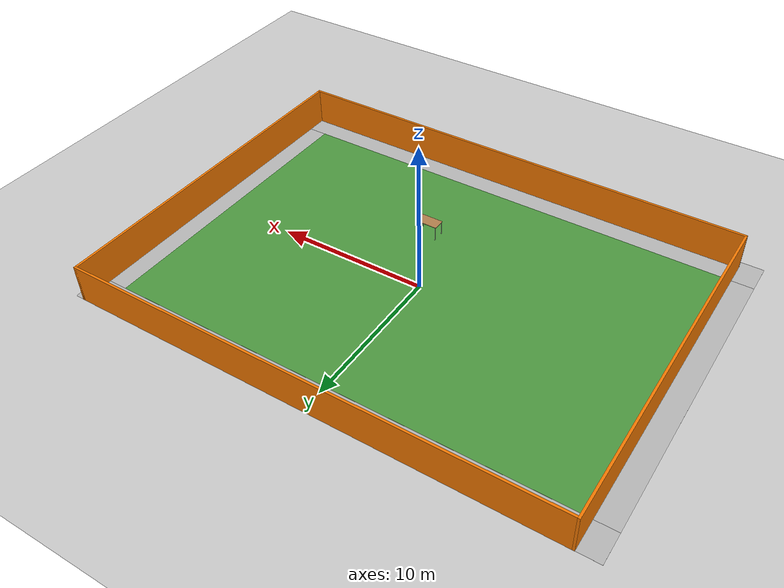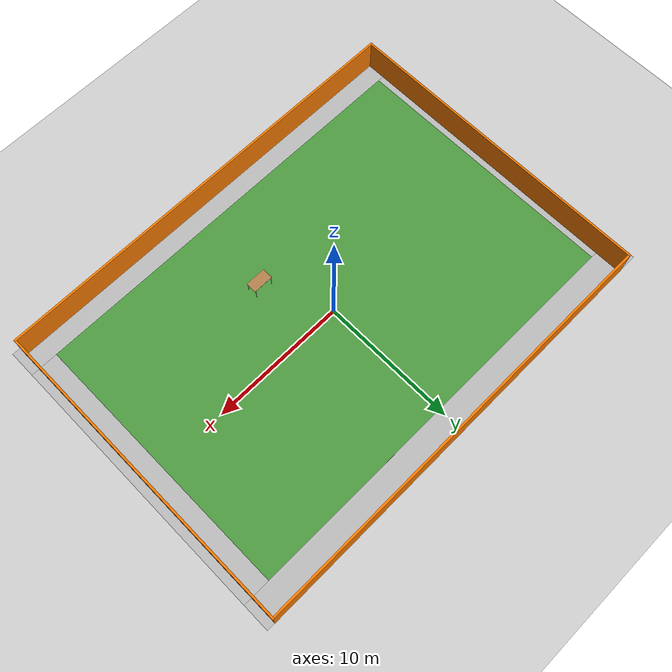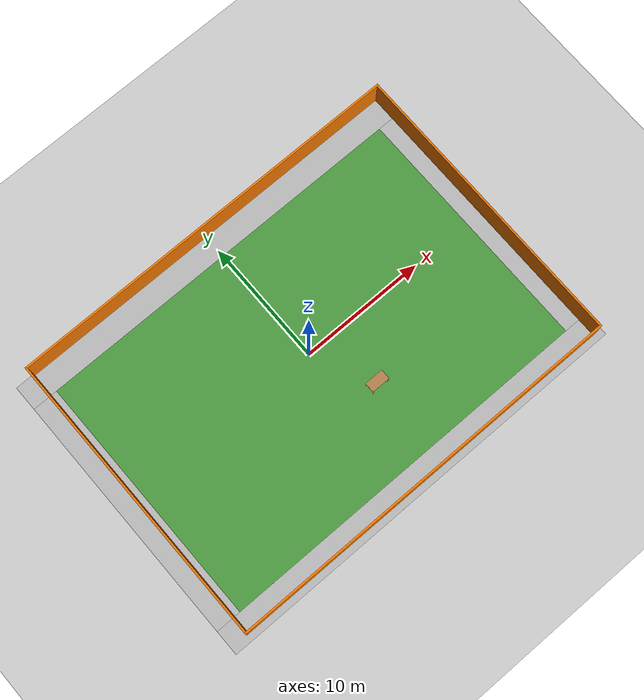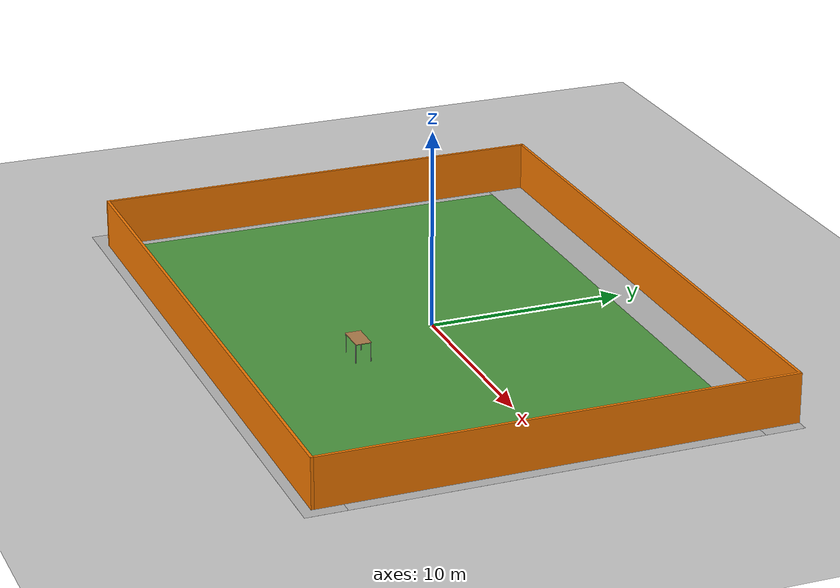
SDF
<sdf version="1.7">
 <world name="default">
  <light name="sun" type="directional">
   <pose>0 0 10 0 -0 0</pose>
   <diffuse>0.8 0.8 0.8 1</diffuse>
   <specular>0.2 0.2 0.2 1</specular>
   <attenuation>
    <range>1000</range>
    <constant>0.9</constant>
    <linear>0.01</linear>
    <quadratic>0.001</quadratic>
   </attenuation>
   <direction>-0.5 0.1 -0.9</direction>
   <spot><inner_angle>0</inner_angle><outer_angle>0</outer_angle><falloff>0</falloff></spot>
  </light>
  <model name="ground_plane">
   <static>1</static>
   <link name="link">
    <collision name="collision">
     <geometry><plane><normal>0 0 1</normal><size>100 100</size></plane></geometry>
     <surface><friction><ode><mu>100</mu><mu2>50</mu2></ode></friction></surface>
    </collision>
    <visual name="visual">
     <cast_shadows>0</cast_shadows>
     <geometry><plane><normal>0 0 1</normal><size>100 100</size></plane></geometry>
     <material>
      <script><uri>file://media/materials/scripts/gazebo.material</uri><name>Gazebo/Grey</name></script>
     </material>
    </visual>
   </link>
  </model>
  <gravity>0 0 -9.8</gravity>
  <magnetic_field>6e-06 2.3e-05 -4.2e-05</magnetic_field>
  <atmosphere type="adiabatic"/>
  <physics type="ode">
   <max_step_size>0.001</max_step_size>
   <real_time_factor>1</real_time_factor>
   <real_time_update_rate>1000</real_time_update_rate>
  </physics>
  <scene><ambient>0.4 0.4 0.4 1</ambient><background>0.7 0.7 0.7 1</background><shadows>1</shadows></scene>
  <spherical_coordinates>
   <surface_model>EARTH_WGS84</surface_model>
   <latitude_deg>0</latitude_deg>
   <longitude_deg>0</longitude_deg>
   <elevation>0</elevation>
   <heading_deg>0</heading_deg>
  </spherical_coordinates>
  <model name="robocup_3d_field">
   <static>1</static>
   <link name="field">
    <pose>0 0 0.01 0 -0 0</pose>
    <collision name="collision">
     <geometry><plane><normal>0 0 1</normal><size>30 20</size></plane></geometry>
     <surface><friction><ode><mu>100</mu><mu2>50</mu2></ode></friction></surface>
    </collision>
    <visual name="base1">
     <pose>0 11 0.001 0 -0 0</pose>
     <cast_shadows>0</cast_shadows>
     <geometry><plane><normal>0 0 1</normal><size>34 2</size></plane></geometry>
     <material>
      <script>
       <uri>model://robocup_3Dsim_field/materials/scripts/</uri>
       <uri>model://robocup_3Dsim_field/materials/textures/</uri>
       <name>RoboCup/FieldBorder</name>
      </script>
     </material>
    </visual>
    <visual name="base2">
     <pose>0 -11 0.001 0 -0 0</pose>
     <cast_shadows>0</cast_shadows>
     <geometry><plane><normal>0 0 1</normal><size>34 2</size></plane></geometry>
     <material>
      <script>
       <uri>model://robocup_3Dsim_field/materials/scripts/</uri>
       <uri>model://robocup_3Dsim_field/materials/textures/</uri>
       <name>RoboCup/FieldBorder</name>
      </script>
     </material>
    </visual>
    <visual name="base3">
     <pose>16 0 0.001 0 -0 0</pose>
     <cast_shadows>0</cast_shadows>
     <geometry><plane><normal>0 0 1</normal><size>2 20</size></plane></geometry>
     <material>
      <script>
       <uri>model://robocup_3Dsim_field/materials/scripts/</uri>
       <uri>model://robocup_3Dsim_field/materials/textures/</uri>
       <name>RoboCup/FieldBorder</name>
      </script>
     </material>
    </visual>
    <visual name="base4">
     <pose>-16 0 0.001 0 -0 0</pose>
     <cast_shadows>0</cast_shadows>
     <geometry><plane><normal>0 0 1</normal><size>2 20</size></plane></geometry>
     <material>
      <script>
       <uri>model://robocup_3Dsim_field/materials/scripts/</uri>
       <uri>model://robocup_3Dsim_field/materials/textures/</uri>
       <name>RoboCup/FieldBorder</name>
      </script>
     </material>
    </visual>
    <visual name="carpet">
     <cast_shadows>0</cast_shadows>
     <geometry><plane><normal>0 0 1</normal><size>30 20</size></plane></geometry>
     <material>
      <script>
       <uri>model://robocup_3Dsim_field/materials/scripts/</uri>
       <uri>model://robocup_3Dsim_field/materials/textures/</uri>
       <name>RoboCup/Grass</name>
      </script>
     </material>
    </visual>
   </link>
   <pose>-0.121937 -0.503301 0 0 -0 0</pose>
  </model>
  <model name="table">
   <static>1</static>
   <link name="link">
    <collision name="surface">
     <pose>0 0 1 0 -0 0</pose>
     <geometry><box><size>1.5 0.8 0.03</size></box></geometry>
     <surface><friction><ode><mu>0.6</mu><mu2>0.6</mu2></ode></friction></surface>
    </collision>
    <visual name="visual1">
     <pose>0 0 1 0 -0 0</pose>
     <geometry><box><size>1.5 0.8 0.03</size></box></geometry>
     <material>
      <script><uri>file://media/materials/scripts/gazebo.material</uri><name>Gazebo/Wood</name></script>
     </material>
    </visual>
    <collision name="front_left_leg">
     <pose>0.68 0.38 0.5 0 -0 0</pose>
     <geometry><cylinder><radius>0.02</radius><length>1</length></cylinder></geometry>
    </collision>
    <visual name="front_left_leg">
     <pose>0.68 0.38 0.5 0 -0 0</pose>
     <geometry><cylinder><radius>0.02</radius><length>1</length></cylinder></geometry>
     <material>
      <script><uri>file://media/materials/scripts/gazebo.material</uri><name>Gazebo/Grey</name></script>
     </material>
    </visual>
    <collision name="front_right_leg">
     <pose>0.68 -0.38 0.5 0 -0 0</pose>
     <geometry><cylinder><radius>0.02</radius><length>1</length></cylinder></geometry>
    </collision>
    <visual name="front_right_leg">
     <pose>0.68 -0.38 0.5 0 -0 0</pose>
     <geometry><cylinder><radius>0.02</radius><length>1</length></cylinder></geometry>
     <material>
      <script><uri>file://media/materials/scripts/gazebo.material</uri><name>Gazebo/Grey</name></script>
     </material>
    </visual>
    <collision name="back_right_leg">
     <pose>-0.68 -0.38 0.5 0 -0 0</pose>
     <geometry><cylinder><radius>0.02</radius><length>1</length></cylinder></geometry>
    </collision>
    <visual name="back_right_leg">
     <pose>-0.68 -0.38 0.5 0 -0 0</pose>
     <geometry><cylinder><radius>0.02</radius><length>1</length></cylinder></geometry>
     <material>
      <script><uri>file://media/materials/scripts/gazebo.material</uri><name>Gazebo/Grey</name></script>
     </material>
    </visual>
    <collision name="back_left_leg">
     <pose>-0.68 0.38 0.5 0 -0 0</pose>
     <geometry><cylinder><radius>0.02</radius><length>1</length></cylinder></geometry>
    </collision>
    <visual name="back_left_leg">
     <pose>-0.68 0.38 0.5 0 -0 0</pose>
     <geometry><cylinder><radius>0.02</radius><length>1</length></cylinder></geometry>
     <material>
      <script><uri>file://media/materials/scripts/gazebo.material</uri><name>Gazebo/Grey</name></script>
     </material>
    </visual>
   </link>
   <pose>2.22926 -4.67258 0 0 -0 0</pose>
  </model>
  <model name="Untitled">
   <pose>0.282311 -0.242367 0 0 -0 0</pose>
   <link name="Wall_10">
    <collision name="Wall_10_Collision">
     <geometry><box><size>32 0.15 2.5</size></box></geometry>
     <pose>0 0 1.25 0 -0 0</pose>
    </collision>
    <visual name="Wall_10_Visual">
     <pose>0 0 1.25 0 -0 0</pose>
     <geometry><box><size>32 0.15 2.5</size></box></geometry>
     <material>
      <script><uri>file://media/materials/scripts/gazebo.material</uri><name>Gazebo/Grey</name></script>
      <ambient>0.960784 0.47451 0 1</ambient>
     </material>
     <meta><layer>0</layer></meta>
    </visual>
    <pose>1e-06 -11.675 0 0 -0 3.14159</pose>
   </link>
   <link name="Wall_7">
    <collision name="Wall_7_Collision">
     <geometry><box><size>23.5 0.15 2.5</size></box></geometry>
     <pose>0 0 1.25 0 -0 0</pose>
    </collision>
    <visual name="Wall_7_Visual">
     <pose>0 0 1.25 0 -0 0</pose>
     <geometry><box><size>23.5 0.15 2.5</size></box></geometry>
     <material>
      <script><uri>file://media/materials/scripts/gazebo.material</uri><name>Gazebo/Grey</name></script>
      <ambient>0.960784 0.47451 0 1</ambient>
     </material>
     <meta><layer>0</layer></meta>
    </visual>
    <pose>-15.925 -0 0 0 -0 1.5708</pose>
   </link>
   <link name="Wall_8">
    <collision name="Wall_8_Collision">
     <geometry><box><size>32 0.15 2.5</size></box></geometry>
     <pose>0 0 1.25 0 -0 0</pose>
    </collision>
    <visual name="Wall_8_Visual">
     <pose>0 0 1.25 0 -0 0</pose>
     <geometry><box><size>32 0.15 2.5</size></box></geometry>
     <material>
      <script><uri>file://media/materials/scripts/gazebo.material</uri><name>Gazebo/Grey</name></script>
      <ambient>0.960784 0.47451 0 1</ambient>
     </material>
     <meta><layer>0</layer></meta>
    </visual>
    <pose>1e-06 11.675 0 0 -0 0</pose>
   </link>
   <link name="Wall_9">
    <collision name="Wall_9_Collision">
     <geometry><box><size>23.5 0.15 2.5</size></box></geometry>
     <pose>0 0 1.25 0 -0 0</pose>
    </collision>
    <visual name="Wall_9_Visual">
     <pose>0 0 1.25 0 -0 0</pose>
     <geometry><box><size>23.5 0.15 2.5</size></box></geometry>
     <material>
      <script><uri>file://media/materials/scripts/gazebo.material</uri><name>Gazebo/Grey</name></script>
      <ambient>0.960784 0.47451 0 1</ambient>
     </material>
     <meta><layer>0</layer></meta>
    </visual>
    <pose>15.925 -0 0 0 -0 -1.5708</pose>
   </link>
   <static>1</static>
  </model>
 </world>
</sdf>
